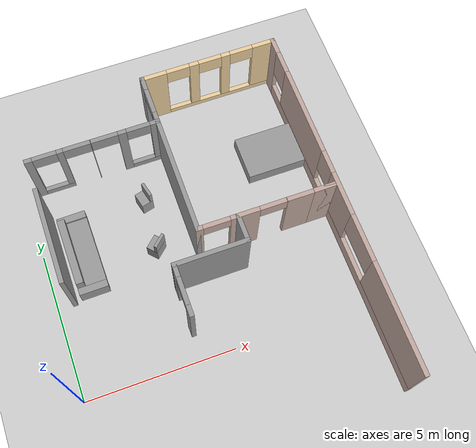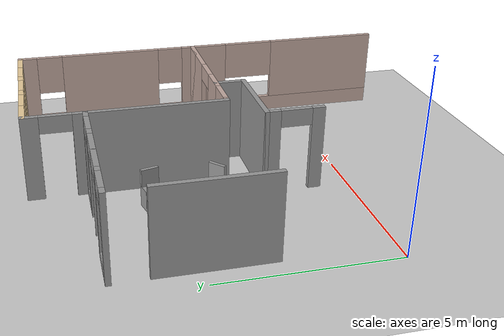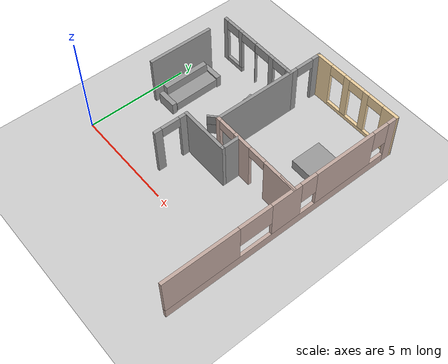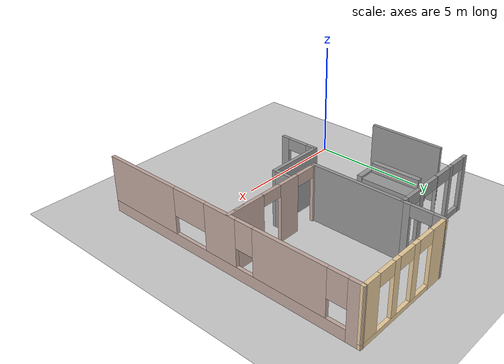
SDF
<sdf version="1.6">
 <world name="default">
  <model name="ground_plane">
   <static>1</static>
   <link name="link">
    <collision name="collision">
     <geometry><plane><normal>0 0 1</normal><size>100 100</size></plane></geometry>
     <surface><friction><ode><mu>100</mu><mu2>50</mu2></ode></friction></surface>
    </collision>
    <visual name="visual">
     <cast_shadows>0</cast_shadows>
     <geometry><plane><normal>0 0 1</normal><size>100 100</size></plane></geometry>
     <material>
      <script><uri>file://media/materials/scripts/gazebo.material</uri><name>Gazebo/Grey</name></script>
     </material>
    </visual>
   </link>
  </model>
  <model name="MDP-Home">
   <pose>0.766606 1.22436 0 0 -0 0</pose>
   <link name="Wall_100">
    <collision name="Wall_100_Collision">
     <geometry><box><size>4.115 0.15 2.5</size></box></geometry>
     <pose>0 0 1.25 0 -0 0</pose>
    </collision>
    <visual name="Wall_100_Visual">
     <pose>0 0 1.25 0 -0 0</pose>
     <geometry><box><size>4.115 0.15 2.5</size></box></geometry>
     <material>
      <script><uri>file://media/materials/scripts/gazebo.material</uri><name>Gazebo/Grey</name></script>
      <ambient>1 1 1 1</ambient>
     </material>
     <meta><layer>0</layer></meta>
    </visual>
    <pose>4.14955 4.10506 0 0 0 -1.5708</pose>
   </link>
   <link name="Wall_102">
    <pose>6.44955 2.12256 0 0 -0 0</pose>
    <visual name="Wall_102_Visual_0">
     <pose>-2.25671 0 1.25 0 -0 0</pose>
     <geometry><box><size>0.236575 0.15 2.5</size></box></geometry>
     <material>
      <script><uri>file://media/materials/scripts/gazebo.material</uri><name>Gazebo/Grey</name></script>
      <ambient>0.760784 0.662745 0.627451 1</ambient>
     </material>
     <meta><layer>0</layer></meta>
    </visual>
    <collision name="Wall_102_Collision_0">
     <geometry><box><size>0.236575 0.15 2.5</size></box></geometry>
     <pose>-2.25671 0 1.25 0 -0 0</pose>
    </collision>
    <visual name="Wall_102_Visual_1">
     <pose>-0.757484 0 1.25 0 -0 0</pose>
     <geometry><box><size>0.961882 0.15 2.5</size></box></geometry>
     <material>
      <script><uri>file://media/materials/scripts/gazebo.material</uri><name>Gazebo/Grey</name></script>
      <ambient>0.760784 0.662745 0.627451 1</ambient>
     </material>
     <meta><layer>0</layer></meta>
    </visual>
    <collision name="Wall_102_Collision_1">
     <geometry><box><size>0.961882 0.15 2.5</size></box></geometry>
     <pose>-0.757484 0 1.25 0 -0 0</pose>
    </collision>
    <visual name="Wall_102_Visual_2">
     <pose>1.49923 0 1.25 0 -0 0</pose>
     <geometry><box><size>1.75154 0.15 2.5</size></box></geometry>
     <material>
      <script><uri>file://media/materials/scripts/gazebo.material</uri><name>Gazebo/Grey</name></script>
      <ambient>0.760784 0.662745 0.627451 1</ambient>
     </material>
     <meta><layer>0</layer></meta>
    </visual>
    <collision name="Wall_102_Collision_2">
     <geometry><box><size>1.75154 0.15 2.5</size></box></geometry>
     <pose>1.49923 0 1.25 0 -0 0</pose>
    </collision>
    <visual name="Wall_102_Visual_3">
     <pose>1.94534 0 1.25 0 -0 0</pose>
     <geometry><box><size>0.859329 0.15 2.5</size></box></geometry>
     <material>
      <script><uri>file://media/materials/scripts/gazebo.material</uri><name>Gazebo/Grey</name></script>
      <ambient>0.760784 0.662745 0.627451 1</ambient>
     </material>
     <meta><layer>0</layer></meta>
    </visual>
    <collision name="Wall_102_Collision_3">
     <geometry><box><size>0.859329 0.15 2.5</size></box></geometry>
     <pose>1.94534 0 1.25 0 -0 0</pose>
    </collision>
    <visual name="Wall_102_Visual_4">
     <pose>-1.68843 0 2.25 0 -0 0</pose>
     <geometry><box><size>0.9 0.15 0.5</size></box></geometry>
     <material>
      <script><uri>file://media/materials/scripts/gazebo.material</uri><name>Gazebo/Grey</name></script>
      <ambient>0.760784 0.662745 0.627451 1</ambient>
     </material>
     <meta><layer>0</layer></meta>
    </visual>
    <collision name="Wall_102_Collision_4">
     <geometry><box><size>0.9 0.15 0.5</size></box></geometry>
     <pose>-1.68843 0 2.25 0 -0 0</pose>
    </collision>
    <visual name="Wall_102_Visual_5">
     <pose>0.169564 0 2.25 0 -0 0</pose>
     <geometry><box><size>0.892214 0.15 0.5</size></box></geometry>
     <material>
      <script><uri>file://media/materials/scripts/gazebo.material</uri><name>Gazebo/Grey</name></script>
      <ambient>0.760784 0.662745 0.627451 1</ambient>
     </material>
     <meta><layer>0</layer></meta>
    </visual>
    <collision name="Wall_102_Collision_5">
     <geometry><box><size>0.892214 0.15 0.5</size></box></geometry>
     <pose>0.169564 0 2.25 0 -0 0</pose>
    </collision>
   </link>
   <link name="Wall_104">
    <collision name="Wall_104_Collision">
     <geometry><box><size>0.991 0.15 2.5</size></box></geometry>
     <pose>0 0 1.25 0 -0 0</pose>
    </collision>
    <visual name="Wall_104_Visual">
     <pose>0 0 1.25 0 -0 0</pose>
     <geometry><box><size>0.991 0.15 2.5</size></box></geometry>
     <material>
      <script><uri>file://media/materials/scripts/gazebo.material</uri><name>Gazebo/Grey</name></script>
      <ambient>1 1 1 1</ambient>
     </material>
     <meta><layer>0</layer></meta>
    </visual>
    <pose>5.46534 1.70115 0 0 0 -1.5708</pose>
   </link>
   <link name="Wall_107">
    <collision name="Wall_107_Collision">
     <geometry><box><size>2.5 0.15 2.5</size></box></geometry>
     <pose>0 0 1.25 0 -0 0</pose>
    </collision>
    <visual name="Wall_107_Visual">
     <pose>0 0 1.25 0 -0 0</pose>
     <geometry><box><size>2.5 0.15 2.5</size></box></geometry>
     <material>
      <script><uri>file://media/materials/scripts/gazebo.material</uri><name>Gazebo/Grey</name></script>
      <ambient>1 1 1 1</ambient>
     </material>
     <meta><layer>0</layer></meta>
    </visual>
    <pose>4.29034 1.28065 0 0 -0 3.14159</pose>
   </link>
   <link name="Wall_122">
    <pose>3.11537 0.480642 0 0 0 -1.57076</pose>
    <visual name="Wall_122_Visual_0">
     <pose>-0.636924 0 1.25 0 -0 0</pose>
     <geometry><box><size>0.476152 0.15 2.5</size></box></geometry>
     <material>
      <script><uri>file://media/materials/scripts/gazebo.material</uri><name>Gazebo/Grey</name></script>
      <ambient>1 1 1 1</ambient>
     </material>
     <meta><layer>0</layer></meta>
    </visual>
    <collision name="Wall_122_Collision_0">
     <geometry><box><size>0.476152 0.15 2.5</size></box></geometry>
     <pose>-0.636924 0 1.25 0 -0 0</pose>
    </collision>
    <visual name="Wall_122_Visual_1">
     <pose>0.688076 0 1.25 0 -0 0</pose>
     <geometry><box><size>0.373848 0.15 2.5</size></box></geometry>
     <material>
      <script><uri>file://media/materials/scripts/gazebo.material</uri><name>Gazebo/Grey</name></script>
      <ambient>1 1 1 1</ambient>
     </material>
     <meta><layer>0</layer></meta>
    </visual>
    <collision name="Wall_122_Collision_1">
     <geometry><box><size>0.373848 0.15 2.5</size></box></geometry>
     <pose>0.688076 0 1.25 0 -0 0</pose>
    </collision>
    <visual name="Wall_122_Visual_2">
     <pose>0.051152 0 2.25 0 -0 0</pose>
     <geometry><box><size>0.9 0.15 0.5</size></box></geometry>
     <material>
      <script><uri>file://media/materials/scripts/gazebo.material</uri><name>Gazebo/Grey</name></script>
      <ambient>1 1 1 1</ambient>
     </material>
     <meta><layer>0</layer></meta>
    </visual>
    <collision name="Wall_122_Collision_2">
     <geometry><box><size>0.9 0.15 0.5</size></box></geometry>
     <pose>0.051152 0 2.25 0 -0 0</pose>
    </collision>
   </link>
   <link name="Wall_155">
    <collision name="Wall_155_Collision">
     <geometry><box><size>3.25 0.15 2.5</size></box></geometry>
     <pose>0 0 1.25 0 -0 0</pose>
    </collision>
    <visual name="Wall_155_Visual">
     <pose>0 0 1.25 0 -0 0</pose>
     <geometry><box><size>3.25 0.15 2.5</size></box></geometry>
     <material>
      <script><uri>file://media/materials/scripts/gazebo.material</uri><name>Gazebo/Grey</name></script>
      <ambient>1 1 1 1</ambient>
     </material>
     <meta><layer>0</layer></meta>
    </visual>
    <pose>-0.178431 3.46212 0 0 0 -1.5708</pose>
   </link>
   <link name="Wall_19">
    <pose>1.96905 6.08756 0 0 -0 0</pose>
    <visual name="Wall_19_Visual_0">
     <pose>-2.12808 0 1.25 0 -0 0</pose>
     <geometry><box><size>0.254843 0.15 2.5</size></box></geometry>
     <material>
      <script><uri>file://media/materials/scripts/gazebo.material</uri><name>Gazebo/Grey</name></script>
      <ambient>1 1 1 1</ambient>
     </material>
     <meta><layer>0</layer></meta>
    </visual>
    <collision name="Wall_19_Collision_0">
     <geometry><box><size>0.254843 0.15 2.5</size></box></geometry>
     <pose>-2.12808 0 1.25 0 -0 0</pose>
    </collision>
    <visual name="Wall_19_Visual_1">
     <pose>-0.079139 0 1.25 0 -0 0</pose>
     <geometry><box><size>0.019703 0.15 2.5</size></box></geometry>
     <material>
      <script><uri>file://media/materials/scripts/gazebo.material</uri><name>Gazebo/Grey</name></script>
      <ambient>1 1 1 1</ambient>
     </material>
     <meta><layer>0</layer></meta>
    </visual>
    <collision name="Wall_19_Collision_1">
     <geometry><box><size>0.019703 0.15 2.5</size></box></geometry>
     <pose>-0.079139 0 1.25 0 -0 0</pose>
    </collision>
    <visual name="Wall_19_Visual_2">
     <pose>0.972216 0 1.25 0 -0 0</pose>
     <geometry><box><size>0.283007 0.15 2.5</size></box></geometry>
     <material>
      <script><uri>file://media/materials/scripts/gazebo.material</uri><name>Gazebo/Grey</name></script>
      <ambient>1 1 1 1</ambient>
     </material>
     <meta><layer>0</layer></meta>
    </visual>
    <collision name="Wall_19_Collision_2">
     <geometry><box><size>0.283007 0.15 2.5</size></box></geometry>
     <pose>0.972216 0 1.25 0 -0 0</pose>
    </collision>
    <visual name="Wall_19_Visual_3">
     <pose>-1.49482 0 0.125 0 -0 0</pose>
     <geometry><box><size>1.01167 0.15 0.25</size></box></geometry>
     <material>
      <script><uri>file://media/materials/scripts/gazebo.material</uri><name>Gazebo/Grey</name></script>
      <ambient>1 1 1 1</ambient>
     </material>
     <meta><layer>0</layer></meta>
    </visual>
    <collision name="Wall_19_Collision_3">
     <geometry><box><size>1.01167 0.15 0.25</size></box></geometry>
     <pose>-1.49482 0 0.125 0 -0 0</pose>
    </collision>
    <visual name="Wall_19_Visual_4">
     <pose>1.68461 0 0.125 0 -0 0</pose>
     <geometry><box><size>1.14178 0.15 0.25</size></box></geometry>
     <material>
      <script><uri>file://media/materials/scripts/gazebo.material</uri><name>Gazebo/Grey</name></script>
      <ambient>1 1 1 1</ambient>
     </material>
     <meta><layer>0</layer></meta>
    </visual>
    <collision name="Wall_19_Collision_4">
     <geometry><box><size>1.14178 0.15 0.25</size></box></geometry>
     <pose>1.68461 0 0.125 0 -0 0</pose>
    </collision>
    <visual name="Wall_19_Visual_5">
     <pose>-1.09482 0 1.375 0 -0 0</pose>
     <geometry><box><size>0.211666 0.15 2.25</size></box></geometry>
     <material>
      <script><uri>file://media/materials/scripts/gazebo.material</uri><name>Gazebo/Grey</name></script>
      <ambient>1 1 1 1</ambient>
     </material>
     <meta><layer>0</layer></meta>
    </visual>
    <collision name="Wall_19_Collision_5">
     <geometry><box><size>0.211666 0.15 2.25</size></box></geometry>
     <pose>-1.09482 0 1.375 0 -0 0</pose>
    </collision>
    <visual name="Wall_19_Visual_6">
     <pose>-1.09482 0 1.375 0 -0 0</pose>
     <geometry><box><size>0.211666 0.15 2.25</size></box></geometry>
     <material>
      <script><uri>file://media/materials/scripts/gazebo.material</uri><name>Gazebo/Grey</name></script>
      <ambient>1 1 1 1</ambient>
     </material>
     <meta><layer>0</layer></meta>
    </visual>
    <collision name="Wall_19_Collision_6">
     <geometry><box><size>0.211666 0.15 2.25</size></box></geometry>
     <pose>-1.09482 0 1.375 0 -0 0</pose>
    </collision>
    <visual name="Wall_19_Visual_7">
     <pose>2.08461 0 1.375 0 -0 0</pose>
     <geometry><box><size>0.34178 0.15 2.25</size></box></geometry>
     <material>
      <script><uri>file://media/materials/scripts/gazebo.material</uri><name>Gazebo/Grey</name></script>
      <ambient>1 1 1 1</ambient>
     </material>
     <meta><layer>0</layer></meta>
    </visual>
    <collision name="Wall_19_Collision_7">
     <geometry><box><size>0.34178 0.15 2.25</size></box></geometry>
     <pose>2.08461 0 1.375 0 -0 0</pose>
    </collision>
    <visual name="Wall_19_Visual_8">
     <pose>-1.60066 0 2.25 0 -0 0</pose>
     <geometry><box><size>0.8 0.15 0.5</size></box></geometry>
     <material>
      <script><uri>file://media/materials/scripts/gazebo.material</uri><name>Gazebo/Grey</name></script>
      <ambient>1 1 1 1</ambient>
     </material>
     <meta><layer>0</layer></meta>
    </visual>
    <collision name="Wall_19_Collision_8">
     <geometry><box><size>0.8 0.15 0.5</size></box></geometry>
     <pose>-1.60066 0 2.25 0 -0 0</pose>
    </collision>
    <visual name="Wall_19_Visual_9">
     <pose>0.380712 0 2.25 0 -0 0</pose>
     <geometry><box><size>0.9 0.15 0.5</size></box></geometry>
     <material>
      <script><uri>file://media/materials/scripts/gazebo.material</uri><name>Gazebo/Grey</name></script>
      <ambient>1 1 1 1</ambient>
     </material>
     <meta><layer>0</layer></meta>
    </visual>
    <collision name="Wall_19_Collision_9">
     <geometry><box><size>0.9 0.15 0.5</size></box></geometry>
     <pose>0.380712 0 2.25 0 -0 0</pose>
    </collision>
    <visual name="Wall_19_Visual_10">
     <pose>1.51372 0 2.25 0 -0 0</pose>
     <geometry><box><size>0.8 0.15 0.5</size></box></geometry>
     <material>
      <script><uri>file://media/materials/scripts/gazebo.material</uri><name>Gazebo/Grey</name></script>
      <ambient>1 1 1 1</ambient>
     </material>
     <meta><layer>0</layer></meta>
    </visual>
    <collision name="Wall_19_Collision_10">
     <geometry><box><size>0.8 0.15 0.5</size></box></geometry>
     <pose>1.51372 0 2.25 0 -0 0</pose>
    </collision>
    <visual name="Wall_19_Visual_11">
     <pose>-0.538991 0 2.25 0 -0 0</pose>
     <geometry><box><size>0.9 0.15 0.5</size></box></geometry>
     <material>
      <script><uri>file://media/materials/scripts/gazebo.material</uri><name>Gazebo/Grey</name></script>
      <ambient>1 1 1 1</ambient>
     </material>
     <meta><layer>0</layer></meta>
    </visual>
    <collision name="Wall_19_Collision_11">
     <geometry><box><size>0.9 0.15 0.5</size></box></geometry>
     <pose>-0.538991 0 2.25 0 -0 0</pose>
    </collision>
    <visual name="Wall_19_Visual_12">
     <pose>-0.538991 0 2.25 0 -0 0</pose>
     <geometry><box><size>0.9 0.15 0.5</size></box></geometry>
     <material>
      <script><uri>file://media/materials/scripts/gazebo.material</uri><name>Gazebo/Grey</name></script>
      <ambient>1 1 1 1</ambient>
     </material>
     <meta><layer>0</layer></meta>
    </visual>
    <collision name="Wall_19_Collision_12">
     <geometry><box><size>0.9 0.15 0.5</size></box></geometry>
     <pose>-0.538991 0 2.25 0 -0 0</pose>
    </collision>
   </link>
   <link name="Wall_21">
    <pose>4.14955 6.92706 0 0 -0 1.5708</pose>
    <visual name="Wall_21_Visual_0">
     <pose>-0.700002 0 1.25 0 -0 0</pose>
     <geometry><box><size>0.428996 0.15 2.5</size></box></geometry>
     <material>
      <script><uri>file://media/materials/scripts/gazebo.material</uri><name>Gazebo/Grey</name></script>
      <ambient>1 1 1 1</ambient>
     </material>
     <meta><layer>0</layer></meta>
    </visual>
    <collision name="Wall_21_Collision_0">
     <geometry><box><size>0.428996 0.15 2.5</size></box></geometry>
     <pose>-0.700002 0 1.25 0 -0 0</pose>
    </collision>
    <visual name="Wall_21_Visual_1">
     <pose>0.664498 0 1.25 0 -0 0</pose>
     <geometry><box><size>0.500004 0.15 2.5</size></box></geometry>
     <material>
      <script><uri>file://media/materials/scripts/gazebo.material</uri><name>Gazebo/Grey</name></script>
      <ambient>1 1 1 1</ambient>
     </material>
     <meta><layer>0</layer></meta>
    </visual>
    <collision name="Wall_21_Collision_1">
     <geometry><box><size>0.500004 0.15 2.5</size></box></geometry>
     <pose>0.664498 0 1.25 0 -0 0</pose>
    </collision>
    <visual name="Wall_21_Visual_2">
     <pose>-0.035504 0 2.25 0 -0 0</pose>
     <geometry><box><size>0.9 0.15 0.5</size></box></geometry>
     <material>
      <script><uri>file://media/materials/scripts/gazebo.material</uri><name>Gazebo/Grey</name></script>
      <ambient>1 1 1 1</ambient>
     </material>
     <meta><layer>0</layer></meta>
    </visual>
    <collision name="Wall_21_Collision_2">
     <geometry><box><size>0.9 0.15 0.5</size></box></geometry>
     <pose>-0.035504 0 2.25 0 -0 0</pose>
    </collision>
   </link>
   <link name="Wall_23">
    <pose>6.46705 7.76656 0 0 -0 0</pose>
    <visual name="Wall_23_Visual_0">
     <pose>-1.93365 0 1.25 0 -0 0</pose>
     <geometry><box><size>0.917702 0.15 2.5</size></box></geometry>
     <material>
      <script><uri>file://media/materials/scripts/gazebo.material</uri><name>Gazebo/Grey</name></script>
      <ambient>0.921569 0.807843 0.615686 1</ambient>
     </material>
     <meta><layer>0</layer></meta>
    </visual>
    <collision name="Wall_23_Collision_0">
     <geometry><box><size>0.917702 0.15 2.5</size></box></geometry>
     <pose>-1.93365 0 1.25 0 -0 0</pose>
    </collision>
    <visual name="Wall_23_Visual_1">
     <pose>0.458851 0 0.1 0 -0 0</pose>
     <geometry><box><size>3.8673 0.15 0.2</size></box></geometry>
     <material>
      <script><uri>file://media/materials/scripts/gazebo.material</uri><name>Gazebo/Grey</name></script>
      <ambient>0.921569 0.807843 0.615686 1</ambient>
     </material>
     <meta><layer>0</layer></meta>
    </visual>
    <collision name="Wall_23_Collision_1">
     <geometry><box><size>3.8673 0.15 0.2</size></box></geometry>
     <pose>0.458851 0 0.1 0 -0 0</pose>
    </collision>
    <visual name="Wall_23_Visual_2">
     <pose>-0.510908 0 1.35 0 -0 0</pose>
     <geometry><box><size>0.327781 0.15 2.3</size></box></geometry>
     <material>
      <script><uri>file://media/materials/scripts/gazebo.material</uri><name>Gazebo/Grey</name></script>
      <ambient>0.921569 0.807843 0.615686 1</ambient>
     </material>
     <meta><layer>0</layer></meta>
    </visual>
    <collision name="Wall_23_Collision_2">
     <geometry><box><size>0.327781 0.15 2.3</size></box></geometry>
     <pose>-0.510908 0 1.35 0 -0 0</pose>
    </collision>
    <visual name="Wall_23_Visual_3">
     <pose>0.609997 0 1.35 0 -0 0</pose>
     <geometry><box><size>0.314028 0.15 2.3</size></box></geometry>
     <material>
      <script><uri>file://media/materials/scripts/gazebo.material</uri><name>Gazebo/Grey</name></script>
      <ambient>0.921569 0.807843 0.615686 1</ambient>
     </material>
     <meta><layer>0</layer></meta>
    </visual>
    <collision name="Wall_23_Collision_3">
     <geometry><box><size>0.314028 0.15 2.3</size></box></geometry>
     <pose>0.609997 0 1.35 0 -0 0</pose>
    </collision>
    <visual name="Wall_23_Visual_4">
     <pose>1.97975 0 1.35 0 -0 0</pose>
     <geometry><box><size>0.82549 0.15 2.3</size></box></geometry>
     <material>
      <script><uri>file://media/materials/scripts/gazebo.material</uri><name>Gazebo/Grey</name></script>
      <ambient>0.921569 0.807843 0.615686 1</ambient>
     </material>
     <meta><layer>0</layer></meta>
    </visual>
    <collision name="Wall_23_Collision_4">
     <geometry><box><size>0.82549 0.15 2.3</size></box></geometry>
     <pose>1.97975 0 1.35 0 -0 0</pose>
    </collision>
    <visual name="Wall_23_Visual_5">
     <pose>-1.0748 0 2.225 0 -0 0</pose>
     <geometry><box><size>0.8 0.15 0.55</size></box></geometry>
     <material>
      <script><uri>file://media/materials/scripts/gazebo.material</uri><name>Gazebo/Grey</name></script>
      <ambient>0.921569 0.807843 0.615686 1</ambient>
     </material>
     <meta><layer>0</layer></meta>
    </visual>
    <collision name="Wall_23_Collision_5">
     <geometry><box><size>0.8 0.15 0.55</size></box></geometry>
     <pose>-1.0748 0 2.225 0 -0 0</pose>
    </collision>
    <visual name="Wall_23_Visual_6">
     <pose>0.052983 0 2.225 0 -0 0</pose>
     <geometry><box><size>0.8 0.15 0.55</size></box></geometry>
     <material>
      <script><uri>file://media/materials/scripts/gazebo.material</uri><name>Gazebo/Grey</name></script>
      <ambient>0.921569 0.807843 0.615686 1</ambient>
     </material>
     <meta><layer>0</layer></meta>
    </visual>
    <collision name="Wall_23_Collision_6">
     <geometry><box><size>0.8 0.15 0.55</size></box></geometry>
     <pose>0.052983 0 2.225 0 -0 0</pose>
    </collision>
    <visual name="Wall_23_Visual_7">
     <pose>1.16701 0 2.225 0 -0 0</pose>
     <geometry><box><size>0.8 0.15 0.55</size></box></geometry>
     <material>
      <script><uri>file://media/materials/scripts/gazebo.material</uri><name>Gazebo/Grey</name></script>
      <ambient>0.921569 0.807843 0.615686 1</ambient>
     </material>
     <meta><layer>0</layer></meta>
    </visual>
    <collision name="Wall_23_Collision_7">
     <geometry><box><size>0.8 0.15 0.55</size></box></geometry>
     <pose>1.16701 0 2.225 0 -0 0</pose>
    </collision>
   </link>
   <link name="Wall_25">
    <pose>8.77955 1.80656 0 0 0 -1.57163</pose>
    <visual name="Wall_25_Visual_0">
     <pose>-5.73549 0 1.25 0 -0 0</pose>
     <geometry><box><size>0.599012 0.15 2.5</size></box></geometry>
     <material>
      <script><uri>file://media/materials/scripts/gazebo.material</uri><name>Gazebo/Grey</name></script>
      <ambient>0.760784 0.662745 0.627451 1</ambient>
     </material>
     <meta><layer>0</layer></meta>
    </visual>
    <collision name="Wall_25_Collision_0">
     <geometry><box><size>0.599012 0.15 2.5</size></box></geometry>
     <pose>-5.73549 0 1.25 0 -0 0</pose>
    </collision>
    <visual name="Wall_25_Visual_1">
     <pose>0.299506 0 0.25 0 -0 0</pose>
     <geometry><box><size>11.471 0.15 0.5</size></box></geometry>
     <material>
      <script><uri>file://media/materials/scripts/gazebo.material</uri><name>Gazebo/Grey</name></script>
      <ambient>0.760784 0.662745 0.627451 1</ambient>
     </material>
     <meta><layer>0</layer></meta>
    </visual>
    <collision name="Wall_25_Collision_1">
     <geometry><box><size>11.471 0.15 0.5</size></box></geometry>
     <pose>0.299506 0 0.25 0 -0 0</pose>
    </collision>
    <visual name="Wall_25_Visual_2">
     <pose>-3.06352 0 1.5 0 -0 0</pose>
     <geometry><box><size>3.14493 0.15 2</size></box></geometry>
     <material>
      <script><uri>file://media/materials/scripts/gazebo.material</uri><name>Gazebo/Grey</name></script>
      <ambient>0.760784 0.662745 0.627451 1</ambient>
     </material>
     <meta><layer>0</layer></meta>
    </visual>
    <collision name="Wall_25_Collision_2">
     <geometry><box><size>3.14493 0.15 2</size></box></geometry>
     <pose>-3.06352 0 1.5 0 -0 0</pose>
    </collision>
    <visual name="Wall_25_Visual_3">
     <pose>0.063573 0 1.5 0 -0 0</pose>
     <geometry><box><size>1.50926 0.15 2</size></box></geometry>
     <material>
      <script><uri>file://media/materials/scripts/gazebo.material</uri><name>Gazebo/Grey</name></script>
      <ambient>0.760784 0.662745 0.627451 1</ambient>
     </material>
     <meta><layer>0</layer></meta>
    </visual>
    <collision name="Wall_25_Collision_3">
     <geometry><box><size>1.50926 0.15 2</size></box></geometry>
     <pose>0.063573 0 1.5 0 -0 0</pose>
    </collision>
    <visual name="Wall_25_Visual_4">
     <pose>4.22545 0 1.5 0 -0 0</pose>
     <geometry><box><size>3.6191 0.15 2</size></box></geometry>
     <material>
      <script><uri>file://media/materials/scripts/gazebo.material</uri><name>Gazebo/Grey</name></script>
      <ambient>0.760784 0.662745 0.627451 1</ambient>
     </material>
     <meta><layer>0</layer></meta>
    </visual>
    <collision name="Wall_25_Collision_4">
     <geometry><box><size>3.6191 0.15 2</size></box></geometry>
     <pose>4.22545 0 1.5 0 -0 0</pose>
    </collision>
    <visual name="Wall_25_Visual_5">
     <pose>-5.03599 0 1.9 0 -0 0</pose>
     <geometry><box><size>0.8 0.15 1.2</size></box></geometry>
     <material>
      <script><uri>file://media/materials/scripts/gazebo.material</uri><name>Gazebo/Grey</name></script>
      <ambient>0.760784 0.662745 0.627451 1</ambient>
     </material>
     <meta><layer>0</layer></meta>
    </visual>
    <collision name="Wall_25_Collision_5">
     <geometry><box><size>0.8 0.15 1.2</size></box></geometry>
     <pose>-5.03599 0 1.9 0 -0 0</pose>
    </collision>
    <visual name="Wall_25_Visual_6">
     <pose>-1.09106 0 1.9 0 -0 0</pose>
     <geometry><box><size>0.8 0.15 1.2</size></box></geometry>
     <material>
      <script><uri>file://media/materials/scripts/gazebo.material</uri><name>Gazebo/Grey</name></script>
      <ambient>0.760784 0.662745 0.627451 1</ambient>
     </material>
     <meta><layer>0</layer></meta>
    </visual>
    <collision name="Wall_25_Collision_6">
     <geometry><box><size>0.8 0.15 1.2</size></box></geometry>
     <pose>-1.09106 0 1.9 0 -0 0</pose>
    </collision>
    <visual name="Wall_25_Visual_7">
     <pose>1.61705 0 1.9 0 -0 0</pose>
     <geometry><box><size>1.5977 0.15 1.2</size></box></geometry>
     <material>
      <script><uri>file://media/materials/scripts/gazebo.material</uri><name>Gazebo/Grey</name></script>
      <ambient>0.760784 0.662745 0.627451 1</ambient>
     </material>
     <meta><layer>0</layer></meta>
    </visual>
    <collision name="Wall_25_Collision_7">
     <geometry><box><size>1.5977 0.15 1.2</size></box></geometry>
     <pose>1.61705 0 1.9 0 -0 0</pose>
    </collision>
   </link>
   <static>1</static>
  </model>
  <model name="Bed_0">
   <link name="link_0">
    <inertial>
     <mass>1</mass>
     <inertia>
      <ixx>0.166667</ixx>
      <ixy>0</ixy>
      <ixz>0</ixz>
      <iyy>0.166667</iyy>
      <iyz>0</iyz>
      <izz>0.166667</izz>
     </inertia>
    </inertial>
    <visual name="visual">
     <geometry><box><size>1.525 2.035 0.5</size></box></geometry>
     <material>
      <lighting>1</lighting>
      <script><uri>file://media/materials/scripts/gazebo.material</uri><name>Gazebo/Grey</name></script>
      <shader type="pixel"><normal_map>__default__</normal_map></shader>
      <ambient>0.3 0.3 0.3 1</ambient>
      <diffuse>0.7 0.7 0.7 1</diffuse>
      <specular>0.01 0.01 0.01 1</specular>
      <emissive>0 0 0 1</emissive>
     </material>
    </visual>
    <collision name="collision">
     <geometry><box><size>1.525 2.035 0.5</size></box></geometry>
     <surface>
      <friction>
       <ode><mu>1</mu><mu2>1</mu2><fdir1>0 0 0</fdir1><slip1>0</slip1><slip2>0</slip2></ode>
       <torsional>
        <coefficient>1</coefficient>
        <patch_radius>0</patch_radius>
        <surface_radius>0</surface_radius>
        <use_patch_radius>1</use_patch_radius>
        <ode><slip>0</slip></ode>
       </torsional>
      </friction>
      <bounce><restitution_coefficient>0</restitution_coefficient><threshold>1e+06</threshold></bounce>
      <contact>
       <collide_without_contact>0</collide_without_contact>
       <collide_without_contact_bitmask>1</collide_without_contact_bitmask>
       <collide_bitmask>1</collide_bitmask>
       <ode>
        <soft_cfm>0</soft_cfm>
        <soft_erp>0.2</soft_erp>
        <kp>1e+13</kp>
        <kd>1</kd>
        <max_vel>0.01</max_vel>
        <min_depth>0</min_depth>
       </ode>
       <bullet>
        <split_impulse>1</split_impulse>
        <split_impulse_penetration_threshold>-0.01</split_impulse_penetration_threshold>
        <soft_cfm>0</soft_cfm>
        <soft_erp>0.2</soft_erp>
        <kp>1e+13</kp>
        <kd>1</kd>
       </bullet>
      </contact>
     </surface>
    </collision>
   </link>
   <static>0</static>
   <pose>8.45326 6.05762 0.249995 0 -7e-06 1.57051</pose>
  </model>
  <model name="Couch">
   <link name="link_0">
    <pose>0.005 -0.08565 -0.1125 0 -0 0</pose>
    <inertial>
     <mass>1</mass>
     <inertia>
      <ixx>0.166667</ixx>
      <ixy>0</ixy>
      <ixz>0</ixz>
      <iyy>0.166667</iyy>
      <iyz>0</iyz>
      <izz>0.166667</izz>
     </inertia>
    </inertial>
    <visual name="visual">
     <geometry><box><size>2.286 0.9652 0.45</size></box></geometry>
     <material>
      <lighting>1</lighting>
      <script><uri>file://media/materials/scripts/gazebo.material</uri><name>Gazebo/Grey</name></script>
      <shader type="pixel"><normal_map>__default__</normal_map></shader>
      <ambient>0.3 0.3 0.3 1</ambient>
      <diffuse>0.7 0.7 0.7 1</diffuse>
      <specular>0.01 0.01 0.01 1</specular>
      <emissive>0 0 0 1</emissive>
     </material>
    </visual>
    <collision name="collision">
     <geometry><box><size>2.286 0.9652 0.45</size></box></geometry>
     <surface>
      <friction>
       <ode><mu>1</mu><mu2>1</mu2><fdir1>0 0 0</fdir1><slip1>0</slip1><slip2>0</slip2></ode>
       <torsional>
        <coefficient>1</coefficient>
        <patch_radius>0</patch_radius>
        <surface_radius>0</surface_radius>
        <use_patch_radius>1</use_patch_radius>
        <ode><slip>0</slip></ode>
       </torsional>
      </friction>
      <bounce><restitution_coefficient>0</restitution_coefficient><threshold>1e+06</threshold></bounce>
      <contact>
       <collide_without_contact>0</collide_without_contact>
       <collide_without_contact_bitmask>1</collide_without_contact_bitmask>
       <collide_bitmask>1</collide_bitmask>
       <ode>
        <soft_cfm>0</soft_cfm>
        <soft_erp>0.2</soft_erp>
        <kp>1e+13</kp>
        <kd>1</kd>
        <max_vel>0.01</max_vel>
        <min_depth>0</min_depth>
       </ode>
       <bullet>
        <split_impulse>1</split_impulse>
        <split_impulse_penetration_threshold>-0.01</split_impulse_penetration_threshold>
        <soft_cfm>0</soft_cfm>
        <soft_erp>0.2</soft_erp>
        <kp>1e+13</kp>
        <kd>1</kd>
       </bullet>
      </contact>
     </surface>
    </collision>
   </link>
   <link name="link_1">
    <pose>-1.278 -0.08565 -0.1125 0 -0 0</pose>
    <inertial>
     <mass>1</mass>
     <inertia>
      <ixx>0.166667</ixx>
      <ixy>0</ixy>
      <ixz>0</ixz>
      <iyy>0.166667</iyy>
      <iyz>0</iyz>
      <izz>0.166667</izz>
     </inertia>
    </inertial>
    <visual name="visual">
     <geometry><box><size>0.24 0.9652 0.6</size></box></geometry>
     <material>
      <lighting>1</lighting>
      <script><uri>file://media/materials/scripts/gazebo.material</uri><name>Gazebo/Grey</name></script>
      <shader type="pixel"><normal_map>__default__</normal_map></shader>
      <ambient>0.3 0.3 0.3 1</ambient>
      <diffuse>0.7 0.7 0.7 1</diffuse>
      <specular>0.01 0.01 0.01 1</specular>
      <emissive>0 0 0 1</emissive>
     </material>
    </visual>
    <collision name="collision">
     <geometry><box><size>0.24 0.9652 0.6</size></box></geometry>
     <surface>
      <friction>
       <ode><mu>1</mu><mu2>1</mu2><fdir1>0 0 0</fdir1><slip1>0</slip1><slip2>0</slip2></ode>
       <torsional>
        <coefficient>1</coefficient>
        <patch_radius>0</patch_radius>
        <surface_radius>0</surface_radius>
        <use_patch_radius>1</use_patch_radius>
        <ode><slip>0</slip></ode>
       </torsional>
      </friction>
      <bounce><restitution_coefficient>0</restitution_coefficient><threshold>1e+06</threshold></bounce>
      <contact>
       <collide_without_contact>0</collide_without_contact>
       <collide_without_contact_bitmask>1</collide_without_contact_bitmask>
       <collide_bitmask>1</collide_bitmask>
       <ode>
        <soft_cfm>0</soft_cfm>
        <soft_erp>0.2</soft_erp>
        <kp>1e+13</kp>
        <kd>1</kd>
        <max_vel>0.01</max_vel>
        <min_depth>0</min_depth>
       </ode>
       <bullet>
        <split_impulse>1</split_impulse>
        <split_impulse_penetration_threshold>-0.01</split_impulse_penetration_threshold>
        <soft_cfm>0</soft_cfm>
        <soft_erp>0.2</soft_erp>
        <kp>1e+13</kp>
        <kd>1</kd>
       </bullet>
      </contact>
     </surface>
    </collision>
   </link>
   <link name="link_1_clone">
    <pose>1.268 -0.08565 -0.1125 0 -0 0</pose>
    <inertial>
     <mass>1</mass>
     <inertia>
      <ixx>0.166667</ixx>
      <ixy>0</ixy>
      <ixz>0</ixz>
      <iyy>0.166667</iyy>
      <iyz>0</iyz>
      <izz>0.166667</izz>
     </inertia>
    </inertial>
    <visual name="visual">
     <geometry><box><size>0.24 0.9652 0.6</size></box></geometry>
     <material>
      <lighting>1</lighting>
      <script><uri>file://media/materials/scripts/gazebo.material</uri><name>Gazebo/Grey</name></script>
      <shader type="pixel"><normal_map>__default__</normal_map></shader>
      <ambient>0.3 0.3 0.3 1</ambient>
      <diffuse>0.7 0.7 0.7 1</diffuse>
      <specular>0.01 0.01 0.01 1</specular>
      <emissive>0 0 0 1</emissive>
     </material>
    </visual>
    <collision name="collision">
     <geometry><box><size>0.24 0.9652 0.6</size></box></geometry>
     <surface>
      <friction>
       <ode><mu>1</mu><mu2>1</mu2><fdir1>0 0 0</fdir1><slip1>0</slip1><slip2>0</slip2></ode>
       <torsional>
        <coefficient>1</coefficient>
        <patch_radius>0</patch_radius>
        <surface_radius>0</surface_radius>
        <use_patch_radius>1</use_patch_radius>
        <ode><slip>0</slip></ode>
       </torsional>
      </friction>
      <bounce><restitution_coefficient>0</restitution_coefficient><threshold>1e+06</threshold></bounce>
      <contact>
       <collide_without_contact>0</collide_without_contact>
       <collide_without_contact_bitmask>1</collide_without_contact_bitmask>
       <collide_bitmask>1</collide_bitmask>
       <ode>
        <soft_cfm>0</soft_cfm>
        <soft_erp>0.2</soft_erp>
        <kp>1e+13</kp>
        <kd>1</kd>
        <max_vel>0.01</max_vel>
        <min_depth>0</min_depth>
       </ode>
       <bullet>
        <split_impulse>1</split_impulse>
        <split_impulse_penetration_threshold>-0.01</split_impulse_penetration_threshold>
        <soft_cfm>0</soft_cfm>
        <soft_erp>0.2</soft_erp>
        <kp>1e+13</kp>
        <kd>1</kd>
       </bullet>
      </contact>
     </surface>
    </collision>
   </link>
   <link name="link_2">
    <pose>0.005 0.25695 0.3375 0 -0 0</pose>
    <inertial>
     <mass>1</mass>
     <inertia>
      <ixx>0.166667</ixx>
      <ixy>0</ixy>
      <ixz>0</ixz>
      <iyy>0.166667</iyy>
      <iyz>0</iyz>
      <izz>0.166667</izz>
     </inertia>
    </inertial>
    <visual name="visual">
     <geometry><box><size>2.286 0.25 0.45</size></box></geometry>
     <material>
      <lighting>1</lighting>
      <script><uri>file://media/materials/scripts/gazebo.material</uri><name>Gazebo/Grey</name></script>
      <shader type="pixel"><normal_map>__default__</normal_map></shader>
      <ambient>0.3 0.3 0.3 1</ambient>
      <diffuse>0.7 0.7 0.7 1</diffuse>
      <specular>0.01 0.01 0.01 1</specular>
      <emissive>0 0 0 1</emissive>
     </material>
    </visual>
    <collision name="collision">
     <geometry><box><size>2.286 0.25 0.45</size></box></geometry>
     <surface>
      <friction>
       <ode><mu>1</mu><mu2>1</mu2><fdir1>0 0 0</fdir1><slip1>0</slip1><slip2>0</slip2></ode>
       <torsional>
        <coefficient>1</coefficient>
        <patch_radius>0</patch_radius>
        <surface_radius>0</surface_radius>
        <use_patch_radius>1</use_patch_radius>
        <ode><slip>0</slip></ode>
       </torsional>
      </friction>
      <bounce><restitution_coefficient>0</restitution_coefficient><threshold>1e+06</threshold></bounce>
      <contact>
       <collide_without_contact>0</collide_without_contact>
       <collide_without_contact_bitmask>1</collide_without_contact_bitmask>
       <collide_bitmask>1</collide_bitmask>
       <ode>
        <soft_cfm>0</soft_cfm>
        <soft_erp>0.2</soft_erp>
        <kp>1e+13</kp>
        <kd>1</kd>
        <max_vel>0.01</max_vel>
        <min_depth>0</min_depth>
       </ode>
       <bullet>
        <split_impulse>1</split_impulse>
        <split_impulse_penetration_threshold>-0.01</split_impulse_penetration_threshold>
        <soft_cfm>0</soft_cfm>
        <soft_erp>0.2</soft_erp>
        <kp>1e+13</kp>
        <kd>1</kd>
       </bullet>
      </contact>
     </surface>
    </collision>
   </link>
   <joint name="link_0_JOINT_0" type="revolute">
    <parent>link_0</parent>
    <child>link_1</child>
    <axis>
     <xyz>0 1 0</xyz>
     <use_parent_model_frame>0</use_parent_model_frame>
     <limit>
      <lower>-1.79769e+308</lower>
      <upper>1.79769e+308</upper>
      <effort>-1</effort>
      <velocity>-1</velocity>
     </limit>
     <dynamics>
      <spring_reference>0</spring_reference>
      <spring_stiffness>0</spring_stiffness>
      <damping>0</damping>
     </dynamics>
    </axis>
    <physics>
     <ode><limit><cfm>0</cfm><erp>0.2</erp></limit><suspension><cfm>0</cfm><erp>0.2</erp></suspension></ode>
    </physics>
   </joint>
   <joint name="link_0_JOINT_1" type="revolute">
    <parent>link_0</parent>
    <child>link_1_clone</child>
    <axis>
     <xyz>0 1 0</xyz>
     <use_parent_model_frame>0</use_parent_model_frame>
     <limit>
      <lower>-1.79769e+308</lower>
      <upper>1.79769e+308</upper>
      <effort>-1</effort>
      <velocity>-1</velocity>
     </limit>
     <dynamics>
      <spring_reference>0</spring_reference>
      <spring_stiffness>0</spring_stiffness>
      <damping>0</damping>
     </dynamics>
    </axis>
    <physics>
     <ode><limit><cfm>0</cfm><erp>0.2</erp></limit><suspension><cfm>0</cfm><erp>0.2</erp></suspension></ode>
    </physics>
   </joint>
   <joint name="link_0_JOINT_2" type="revolute">
    <parent>link_0</parent>
    <child>link_2</child>
    <axis>
     <xyz>1 0 0</xyz>
     <use_parent_model_frame>0</use_parent_model_frame>
     <limit>
      <lower>-1.79769e+308</lower>
      <upper>1.79769e+308</upper>
      <effort>-1</effort>
      <velocity>-1</velocity>
     </limit>
     <dynamics>
      <spring_reference>0</spring_reference>
      <spring_stiffness>0</spring_stiffness>
      <damping>0</damping>
     </dynamics>
    </axis>
    <physics>
     <ode><limit><cfm>0</cfm><erp>0.2</erp></limit><suspension><cfm>0</cfm><erp>0.2</erp></suspension></ode>
    </physics>
   </joint>
   <static>0</static>
   <pose>1.21264 4.56225 0.4125 0 -0 1.58211</pose>
  </model>
  <model name="Chain-No_Arms">
   <link name="link_0">
    <pose>0 0.0762 -0.2794 0 -0 0</pose>
    <inertial>
     <mass>1</mass>
     <inertia>
      <ixx>0.166667</ixx>
      <ixy>0</ixy>
      <ixz>0</ixz>
      <iyy>0.166667</iyy>
      <iyz>0</iyz>
      <izz>0.166667</izz>
     </inertia>
    </inertial>
    <visual name="visual">
     <geometry><box><size>0.508 0.4064 0.6096</size></box></geometry>
     <material>
      <lighting>1</lighting>
      <script><uri>file://media/materials/scripts/gazebo.material</uri><name>Gazebo/Grey</name></script>
      <shader type="pixel"><normal_map>__default__</normal_map></shader>
      <ambient>0.3 0.3 0.3 1</ambient>
      <diffuse>0.7 0.7 0.7 1</diffuse>
      <specular>0.01 0.01 0.01 1</specular>
      <emissive>0 0 0 1</emissive>
     </material>
    </visual>
    <collision name="collision">
     <geometry><box><size>0.508 0.406 0.6096</size></box></geometry>
     <surface>
      <friction>
       <ode><mu>1</mu><mu2>1</mu2><fdir1>0 0 0</fdir1><slip1>0</slip1><slip2>0</slip2></ode>
       <torsional>
        <coefficient>1</coefficient>
        <patch_radius>0</patch_radius>
        <surface_radius>0</surface_radius>
        <use_patch_radius>1</use_patch_radius>
        <ode><slip>0</slip></ode>
       </torsional>
      </friction>
      <bounce><restitution_coefficient>0</restitution_coefficient><threshold>1e+06</threshold></bounce>
      <contact>
       <collide_without_contact>0</collide_without_contact>
       <collide_without_contact_bitmask>1</collide_without_contact_bitmask>
       <collide_bitmask>1</collide_bitmask>
       <ode>
        <soft_cfm>0</soft_cfm>
        <soft_erp>0.2</soft_erp>
        <kp>1e+13</kp>
        <kd>1</kd>
        <max_vel>0.01</max_vel>
        <min_depth>0</min_depth>
       </ode>
       <bullet>
        <split_impulse>1</split_impulse>
        <split_impulse_penetration_threshold>-0.01</split_impulse_penetration_threshold>
        <soft_cfm>0</soft_cfm>
        <soft_erp>0.2</soft_erp>
        <kp>1e+13</kp>
        <kd>1</kd>
       </bullet>
      </contact>
     </surface>
    </collision>
   </link>
   <link name="link_1">
    <pose>0 -0.0762 0.2794 0 -0 0</pose>
    <inertial>
     <mass>1</mass>
     <inertia>
      <ixx>0.166667</ixx>
      <ixy>0</ixy>
      <ixz>0</ixz>
      <iyy>0.166667</iyy>
      <iyz>0</iyz>
      <izz>0.166667</izz>
     </inertia>
    </inertial>
    <visual name="visual">
     <geometry><box><size>0.508 0.1016 0.508</size></box></geometry>
     <material>
      <lighting>1</lighting>
      <script><uri>file://media/materials/scripts/gazebo.material</uri><name>Gazebo/Grey</name></script>
      <shader type="pixel"><normal_map>__default__</normal_map></shader>
      <ambient>0.3 0.3 0.3 1</ambient>
      <diffuse>0.7 0.7 0.7 1</diffuse>
      <specular>0.01 0.01 0.01 1</specular>
      <emissive>0 0 0 1</emissive>
     </material>
    </visual>
    <collision name="collision">
     <geometry><box><size>0.508 0.1016 0.508</size></box></geometry>
     <surface>
      <friction>
       <ode><mu>1</mu><mu2>1</mu2><fdir1>0 0 0</fdir1><slip1>0</slip1><slip2>0</slip2></ode>
       <torsional>
        <coefficient>1</coefficient>
        <patch_radius>0</patch_radius>
        <surface_radius>0</surface_radius>
        <use_patch_radius>1</use_patch_radius>
        <ode><slip>0</slip></ode>
       </torsional>
      </friction>
      <bounce><restitution_coefficient>0</restitution_coefficient><threshold>1e+06</threshold></bounce>
      <contact>
       <collide_without_contact>0</collide_without_contact>
       <collide_without_contact_bitmask>1</collide_without_contact_bitmask>
       <collide_bitmask>1</collide_bitmask>
       <ode>
        <soft_cfm>0</soft_cfm>
        <soft_erp>0.2</soft_erp>
        <kp>1e+13</kp>
        <kd>1</kd>
        <max_vel>0.01</max_vel>
        <min_depth>0</min_depth>
       </ode>
       <bullet>
        <split_impulse>1</split_impulse>
        <split_impulse_penetration_threshold>-0.01</split_impulse_penetration_threshold>
        <soft_cfm>0</soft_cfm>
        <soft_erp>0.2</soft_erp>
        <kp>1e+13</kp>
        <kd>1</kd>
       </bullet>
      </contact>
     </surface>
    </collision>
   </link>
   <joint name="link_0_JOINT_0" type="revolute">
    <parent>link_0</parent>
    <child>link_1</child>
    <axis>
     <xyz>0 0 1</xyz>
     <use_parent_model_frame>0</use_parent_model_frame>
     <limit>
      <lower>-1.79769e+308</lower>
      <upper>1.79769e+308</upper>
      <effort>-1</effort>
      <velocity>-1</velocity>
     </limit>
     <dynamics>
      <spring_reference>0</spring_reference>
      <spring_stiffness>0</spring_stiffness>
      <damping>0</damping>
     </dynamics>
    </axis>
    <physics>
     <ode><limit><cfm>0</cfm><erp>0.2</erp></limit><suspension><cfm>0</cfm><erp>0.2</erp></suspension></ode>
    </physics>
   </joint>
   <static>0</static>
   <pose>3.71143 3.95989 0.5842 -0 2e-06 0.742669</pose>
  </model>
  <model name="Chain-No_Arms_0">
   <link name="link_0">
    <pose>0 0.0762 -0.2794 0 -0 0</pose>
    <inertial>
     <mass>1</mass>
     <inertia>
      <ixx>0.166667</ixx>
      <ixy>0</ixy>
      <ixz>0</ixz>
      <iyy>0.166667</iyy>
      <iyz>0</iyz>
      <izz>0.166667</izz>
     </inertia>
    </inertial>
    <visual name="visual">
     <geometry><box><size>0.508 0.4064 0.6096</size></box></geometry>
     <material>
      <lighting>1</lighting>
      <script><uri>file://media/materials/scripts/gazebo.material</uri><name>Gazebo/Grey</name></script>
      <shader type="pixel"><normal_map>__default__</normal_map></shader>
      <ambient>0.3 0.3 0.3 1</ambient>
      <diffuse>0.7 0.7 0.7 1</diffuse>
      <specular>0.01 0.01 0.01 1</specular>
      <emissive>0 0 0 1</emissive>
     </material>
    </visual>
    <collision name="collision">
     <geometry><box><size>0.508 0.406 0.6096</size></box></geometry>
     <surface>
      <friction>
       <ode><mu>1</mu><mu2>1</mu2><fdir1>0 0 0</fdir1><slip1>0</slip1><slip2>0</slip2></ode>
       <torsional>
        <coefficient>1</coefficient>
        <patch_radius>0</patch_radius>
        <surface_radius>0</surface_radius>
        <use_patch_radius>1</use_patch_radius>
        <ode><slip>0</slip></ode>
       </torsional>
      </friction>
      <bounce><restitution_coefficient>0</restitution_coefficient><threshold>1e+06</threshold></bounce>
      <contact>
       <collide_without_contact>0</collide_without_contact>
       <collide_without_contact_bitmask>1</collide_without_contact_bitmask>
       <collide_bitmask>1</collide_bitmask>
       <ode>
        <soft_cfm>0</soft_cfm>
        <soft_erp>0.2</soft_erp>
        <kp>1e+13</kp>
        <kd>1</kd>
        <max_vel>0.01</max_vel>
        <min_depth>0</min_depth>
       </ode>
       <bullet>
        <split_impulse>1</split_impulse>
        <split_impulse_penetration_threshold>-0.01</split_impulse_penetration_threshold>
        <soft_cfm>0</soft_cfm>
        <soft_erp>0.2</soft_erp>
        <kp>1e+13</kp>
        <kd>1</kd>
       </bullet>
      </contact>
     </surface>
    </collision>
   </link>
   <link name="link_1">
    <pose>0 -0.0762 0.2794 0 -0 0</pose>
    <inertial>
     <mass>1</mass>
     <inertia>
      <ixx>0.166667</ixx>
      <ixy>0</ixy>
      <ixz>0</ixz>
      <iyy>0.166667</iyy>
      <iyz>0</iyz>
      <izz>0.166667</izz>
     </inertia>
    </inertial>
    <visual name="visual">
     <geometry><box><size>0.508 0.1016 0.508</size></box></geometry>
     <material>
      <lighting>1</lighting>
      <script><uri>file://media/materials/scripts/gazebo.material</uri><name>Gazebo/Grey</name></script>
      <shader type="pixel"><normal_map>__default__</normal_map></shader>
      <ambient>0.3 0.3 0.3 1</ambient>
      <diffuse>0.7 0.7 0.7 1</diffuse>
      <specular>0.01 0.01 0.01 1</specular>
      <emissive>0 0 0 1</emissive>
     </material>
    </visual>
    <collision name="collision">
     <geometry><box><size>0.508 0.1016 0.508</size></box></geometry>
     <surface>
      <friction>
       <ode><mu>1</mu><mu2>1</mu2><fdir1>0 0 0</fdir1><slip1>0</slip1><slip2>0</slip2></ode>
       <torsional>
        <coefficient>1</coefficient>
        <patch_radius>0</patch_radius>
        <surface_radius>0</surface_radius>
        <use_patch_radius>1</use_patch_radius>
        <ode><slip>0</slip></ode>
       </torsional>
      </friction>
      <bounce><restitution_coefficient>0</restitution_coefficient><threshold>1e+06</threshold></bounce>
      <contact>
       <collide_without_contact>0</collide_without_contact>
       <collide_without_contact_bitmask>1</collide_without_contact_bitmask>
       <collide_bitmask>1</collide_bitmask>
       <ode>
        <soft_cfm>0</soft_cfm>
        <soft_erp>0.2</soft_erp>
        <kp>1e+13</kp>
        <kd>1</kd>
        <max_vel>0.01</max_vel>
        <min_depth>0</min_depth>
       </ode>
       <bullet>
        <split_impulse>1</split_impulse>
        <split_impulse_penetration_threshold>-0.01</split_impulse_penetration_threshold>
        <soft_cfm>0</soft_cfm>
        <soft_erp>0.2</soft_erp>
        <kp>1e+13</kp>
        <kd>1</kd>
       </bullet>
      </contact>
     </surface>
    </collision>
   </link>
   <joint name="link_0_JOINT_0" type="revolute">
    <parent>link_0</parent>
    <child>link_1</child>
    <axis>
     <xyz>0 0 1</xyz>
     <use_parent_model_frame>0</use_parent_model_frame>
     <limit>
      <lower>-1.79769e+308</lower>
      <upper>1.79769e+308</upper>
      <effort>-1</effort>
      <velocity>-1</velocity>
     </limit>
     <dynamics>
      <spring_reference>0</spring_reference>
      <spring_stiffness>0</spring_stiffness>
      <damping>0</damping>
     </dynamics>
    </axis>
    <physics>
     <ode><limit><cfm>0</cfm><erp>0.2</erp></limit><suspension><cfm>0</cfm><erp>0.2</erp></suspension></ode>
    </physics>
   </joint>
   <static>0</static>
   <pose>3.85169 5.74177 0.584199 -1e-06 -3e-06 1.81303</pose>
  </model>
 </world>
</sdf>
